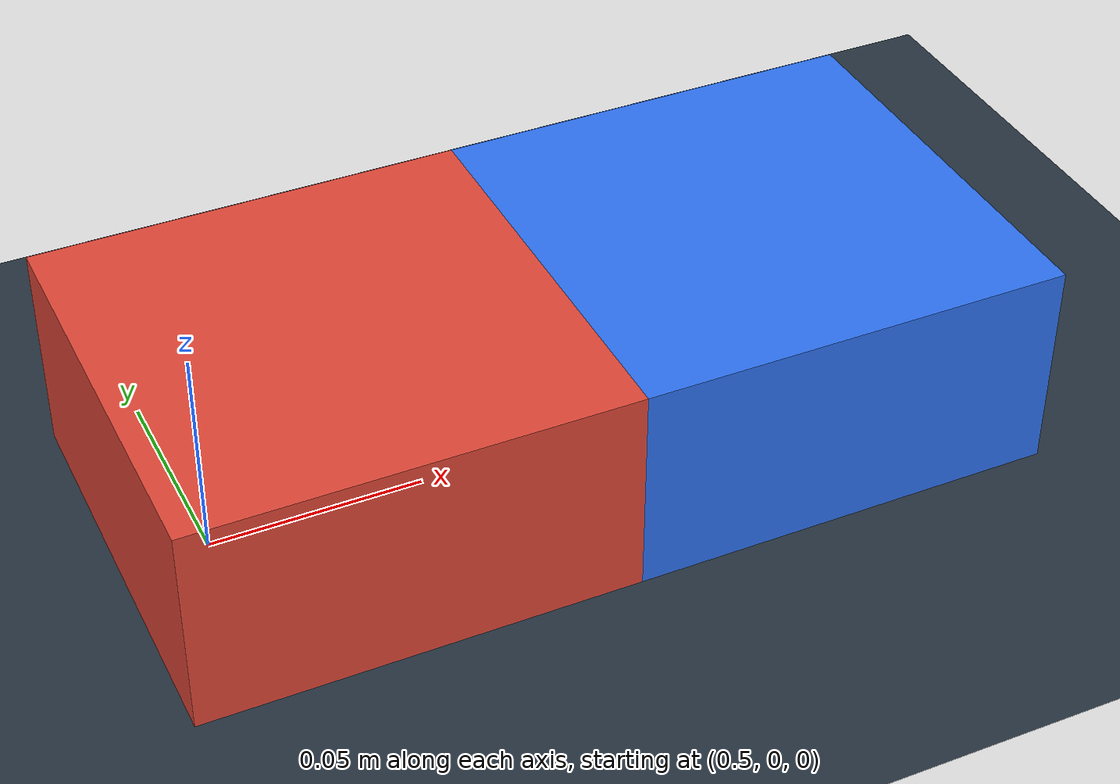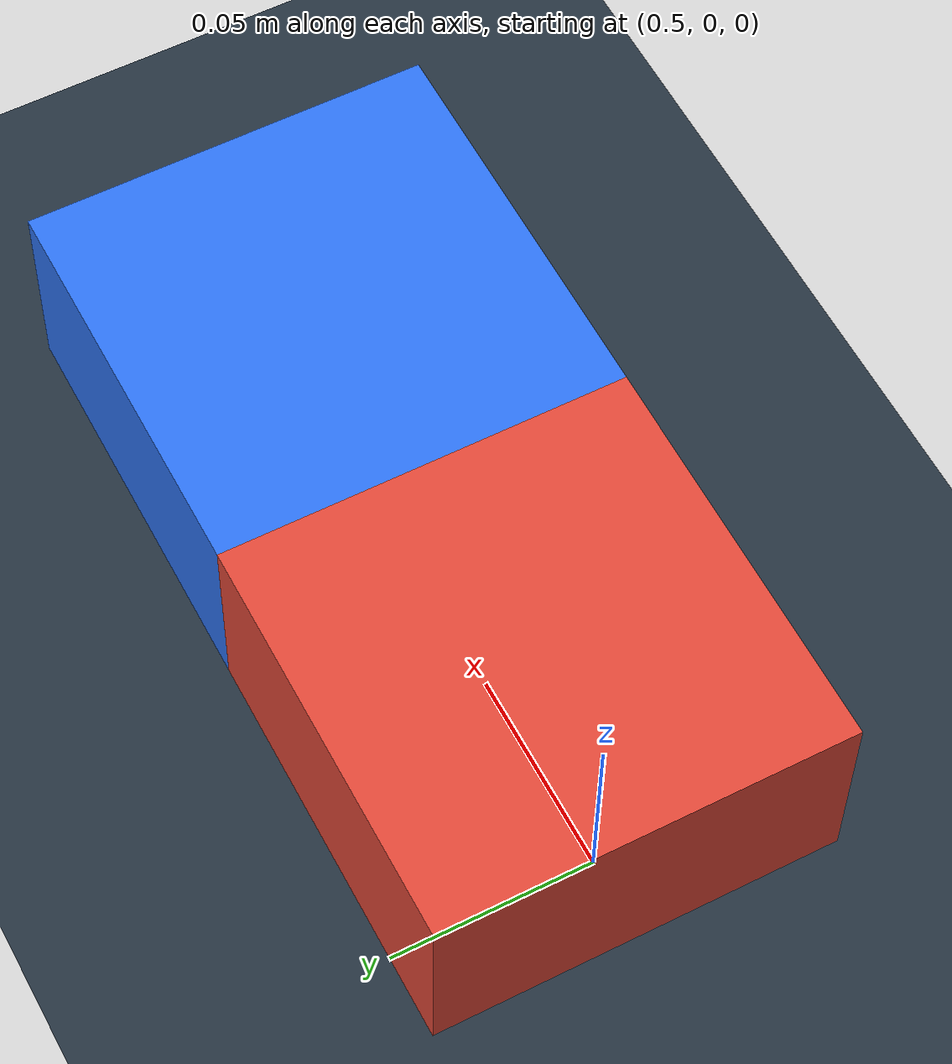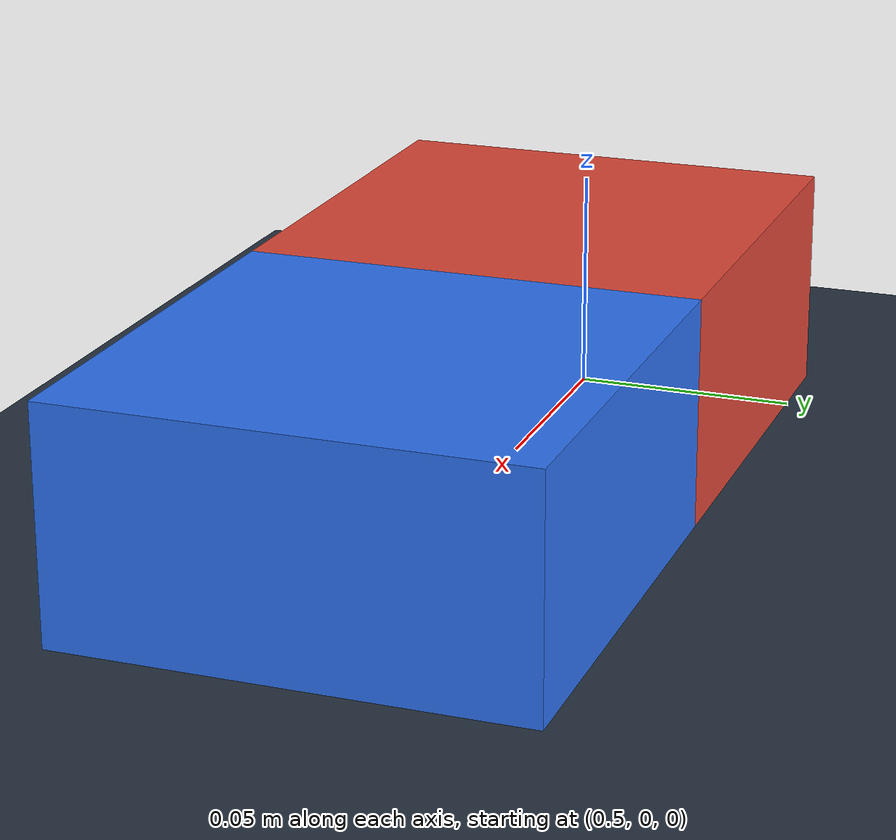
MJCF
<mujoco model="block_force_scene">
  <statistic center="0.3 0.0 0.12" extent="1.0"/>

  <option timestep="0.002" iterations="20" ls_iterations="16" integrator="implicitfast">
    <flag eulerdamp="disable"/>
  </option>

  <visual>
    <headlight diffuse="0.6 0.6 0.6" ambient="0.3 0.3 0.3" specular="0 0 0"/>
    <rgba haze="0.15 0.25 0.35 1"/>
    <global azimuth="120" elevation="-20" offwidth="960" offheight="720"/>
  </visual>

  <asset>
    <texture type="skybox" builtin="gradient" rgb1="0.3 0.5 0.7" rgb2="0 0 0" width="512" height="3072"/>
    <texture type="2d" name="floor_checker" builtin="checker" mark="edge"
      rgb1="0.20 0.26 0.32" rgb2="0.10 0.14 0.18" markrgb="0.85 0.85 0.85"
      width="300" height="300"/>
    <material name="floor_checker_mat" texture="floor_checker" texuniform="true" texrepeat="6 6" reflectance="0"/>
    <material name="block_mat" rgba="0.82 0.24 0.18 1"/>
    <material name="start_mat" rgba="0.18 0.45 0.95 0.28"/>
  </asset>

  <worldbody>
    <light pos="0 0 1.5" dir="0 0 -1" directional="true"/>
    <geom name="floor" pos="0 0 0" size="0 0 0.05" type="plane" material="floor_checker_mat"
      friction="0.0 0.0 0.0" contype="1" conaffinity="1"/>

    <body name="push_block" pos="0.58 0.0 0.025">
      <freejoint/>
      <geom name="push_block_left" type="box" pos="-0.05 0 0" size="0.05 0.05 0.025" condim="3"
        friction="0.05 0.0 0.0" rgba="0.88 0.28 0.22 1" contype="2" conaffinity="3" solref="0.01 1"/>
      <geom name="push_block_right" type="box" pos="0.05 0 0" size="0.05 0.05 0.025" condim="3"
        friction="0.55 0.0 0.0" rgba="0.18 0.45 0.95 1" contype="2" conaffinity="3" solref="0.01 1"/>
    </body>

  </worldbody>
</mujoco>
